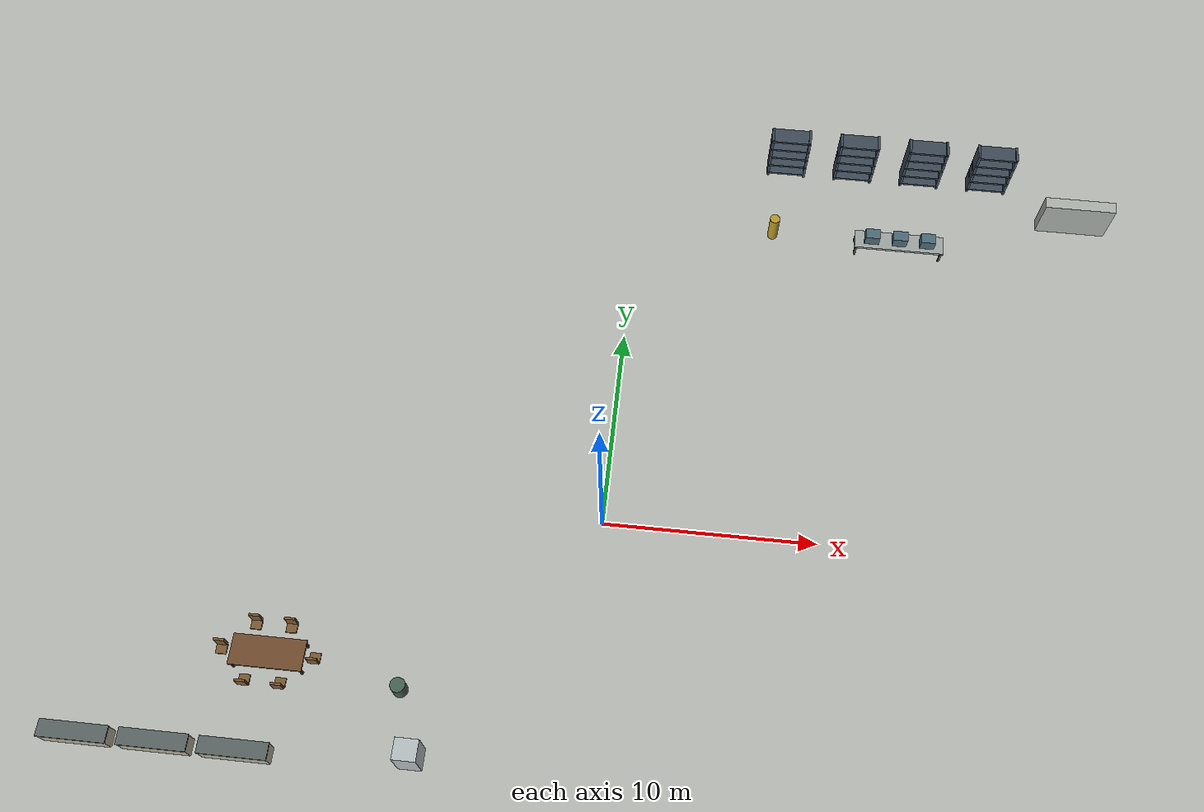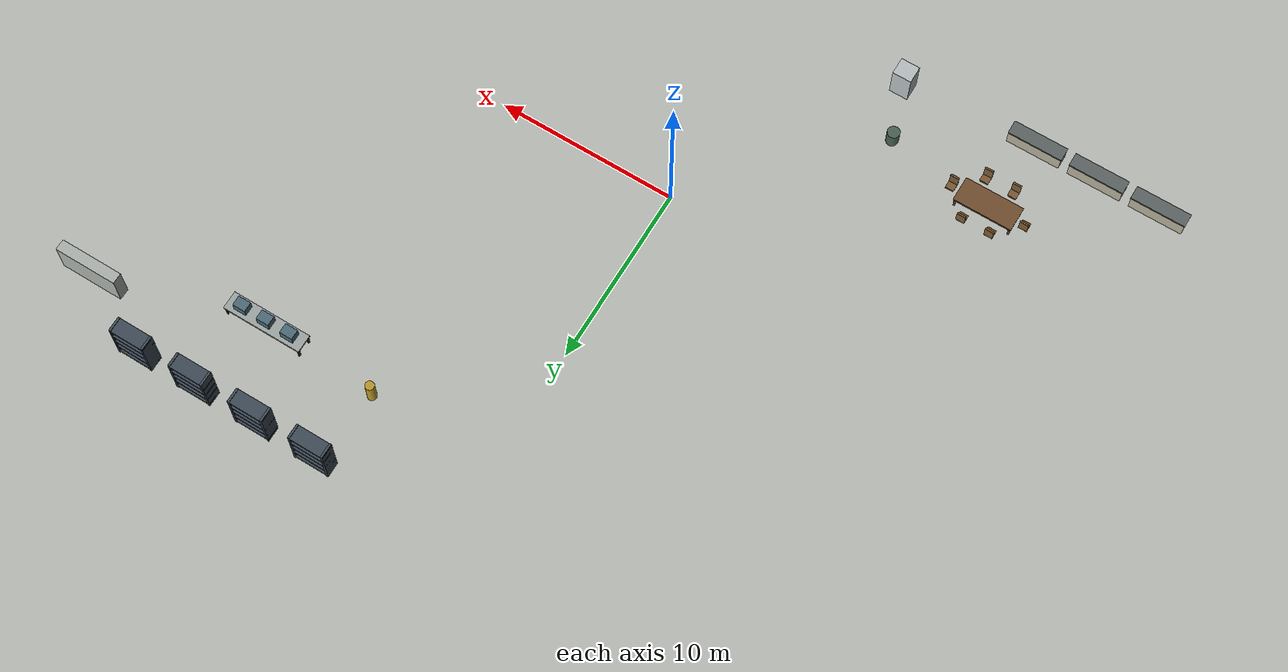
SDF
<sdf version="1.9">
 <world name="default">
  <model name="ground">
   <static>true</static>
   <link name="ground_link">
    <collision name="ground_collision">
     <geometry><plane><normal>0 0 1</normal><size>50 50</size></plane></geometry>
    </collision>
    <visual name="ground_visual">
     <geometry><plane><normal>0 0 1</normal><size>50 50</size></plane></geometry>
     <material><ambient>0.72 0.73 0.71 1</ambient><diffuse>0.72 0.73 0.71 1</diffuse></material>
    </visual>
   </link>
  </model>
  <model name="server_lab_furniture">
   <static>true</static>
   <link name="server_rack_0_shelf_0">
    <pose>7.500 21.000 0.200 0 0 0.0000</pose>
    <collision name="collision"><geometry><box><size>2.000 0.820 0.100</size></box></geometry></collision>
    <visual name="visual">
     <geometry><box><size>2.000 0.820 0.100</size></box></geometry>
     <material><ambient>0.24 0.29 0.34 1</ambient><diffuse>0.24 0.29 0.34 1</diffuse></material>
    </visual>
   </link>
   <link name="server_rack_0_shelf_1">
    <pose>7.500 21.000 0.850 0 0 0.0000</pose>
    <collision name="collision"><geometry><box><size>2.000 0.820 0.100</size></box></geometry></collision>
    <visual name="visual">
     <geometry><box><size>2.000 0.820 0.100</size></box></geometry>
     <material><ambient>0.24 0.29 0.34 1</ambient><diffuse>0.24 0.29 0.34 1</diffuse></material>
    </visual>
   </link>
   <link name="server_rack_0_shelf_2">
    <pose>7.500 21.000 1.500 0 0 0.0000</pose>
    <collision name="collision"><geometry><box><size>2.000 0.820 0.100</size></box></geometry></collision>
    <visual name="visual">
     <geometry><box><size>2.000 0.820 0.100</size></box></geometry>
     <material><ambient>0.24 0.29 0.34 1</ambient><diffuse>0.24 0.29 0.34 1</diffuse></material>
    </visual>
   </link>
   <link name="server_rack_0_shelf_3">
    <pose>7.500 21.000 2.150 0 0 0.0000</pose>
    <collision name="collision"><geometry><box><size>2.000 0.820 0.100</size></box></geometry></collision>
    <visual name="visual">
     <geometry><box><size>2.000 0.820 0.100</size></box></geometry>
     <material><ambient>0.24 0.29 0.34 1</ambient><diffuse>0.24 0.29 0.34 1</diffuse></material>
    </visual>
   </link>
   <link name="server_rack_0_shelf_4">
    <pose>7.500 21.000 2.800 0 0 0.0000</pose>
    <collision name="collision"><geometry><box><size>2.000 0.820 0.100</size></box></geometry></collision>
    <visual name="visual">
     <geometry><box><size>2.000 0.820 0.100</size></box></geometry>
     <material><ambient>0.24 0.29 0.34 1</ambient><diffuse>0.24 0.29 0.34 1</diffuse></material>
    </visual>
   </link>
   <link name="server_rack_0_side_0">
    <pose>6.560 21.000 1.450 0 0 0.0000</pose>
    <collision name="collision"><geometry><box><size>0.120 0.820 2.900</size></box></geometry></collision>
    <visual name="visual">
     <geometry><box><size>0.120 0.820 2.900</size></box></geometry>
     <material><ambient>0.24 0.29 0.34 1</ambient><diffuse>0.24 0.29 0.34 1</diffuse></material>
    </visual>
   </link>
   <link name="server_rack_0_side_1">
    <pose>8.440 21.000 1.450 0 0 0.0000</pose>
    <collision name="collision"><geometry><box><size>0.120 0.820 2.900</size></box></geometry></collision>
    <visual name="visual">
     <geometry><box><size>0.120 0.820 2.900</size></box></geometry>
     <material><ambient>0.24 0.29 0.34 1</ambient><diffuse>0.24 0.29 0.34 1</diffuse></material>
    </visual>
   </link>
   <link name="server_rack_1_shelf_0">
    <pose>11.000 21.000 0.200 0 0 0.0000</pose>
    <collision name="collision"><geometry><box><size>2.000 0.820 0.100</size></box></geometry></collision>
    <visual name="visual">
     <geometry><box><size>2.000 0.820 0.100</size></box></geometry>
     <material><ambient>0.24 0.29 0.34 1</ambient><diffuse>0.24 0.29 0.34 1</diffuse></material>
    </visual>
   </link>
   <link name="server_rack_1_shelf_1">
    <pose>11.000 21.000 0.850 0 0 0.0000</pose>
    <collision name="collision"><geometry><box><size>2.000 0.820 0.100</size></box></geometry></collision>
    <visual name="visual">
     <geometry><box><size>2.000 0.820 0.100</size></box></geometry>
     <material><ambient>0.24 0.29 0.34 1</ambient><diffuse>0.24 0.29 0.34 1</diffuse></material>
    </visual>
   </link>
   <link name="server_rack_1_shelf_2">
    <pose>11.000 21.000 1.500 0 0 0.0000</pose>
    <collision name="collision"><geometry><box><size>2.000 0.820 0.100</size></box></geometry></collision>
    <visual name="visual">
     <geometry><box><size>2.000 0.820 0.100</size></box></geometry>
     <material><ambient>0.24 0.29 0.34 1</ambient><diffuse>0.24 0.29 0.34 1</diffuse></material>
    </visual>
   </link>
   <link name="server_rack_1_shelf_3">
    <pose>11.000 21.000 2.150 0 0 0.0000</pose>
    <collision name="collision"><geometry><box><size>2.000 0.820 0.100</size></box></geometry></collision>
    <visual name="visual">
     <geometry><box><size>2.000 0.820 0.100</size></box></geometry>
     <material><ambient>0.24 0.29 0.34 1</ambient><diffuse>0.24 0.29 0.34 1</diffuse></material>
    </visual>
   </link>
   <link name="server_rack_1_shelf_4">
    <pose>11.000 21.000 2.800 0 0 0.0000</pose>
    <collision name="collision"><geometry><box><size>2.000 0.820 0.100</size></box></geometry></collision>
    <visual name="visual">
     <geometry><box><size>2.000 0.820 0.100</size></box></geometry>
     <material><ambient>0.24 0.29 0.34 1</ambient><diffuse>0.24 0.29 0.34 1</diffuse></material>
    </visual>
   </link>
   <link name="server_rack_1_side_0">
    <pose>10.060 21.000 1.450 0 0 0.0000</pose>
    <collision name="collision"><geometry><box><size>0.120 0.820 2.900</size></box></geometry></collision>
    <visual name="visual">
     <geometry><box><size>0.120 0.820 2.900</size></box></geometry>
     <material><ambient>0.24 0.29 0.34 1</ambient><diffuse>0.24 0.29 0.34 1</diffuse></material>
    </visual>
   </link>
   <link name="server_rack_1_side_1">
    <pose>11.940 21.000 1.450 0 0 0.0000</pose>
    <collision name="collision"><geometry><box><size>0.120 0.820 2.900</size></box></geometry></collision>
    <visual name="visual">
     <geometry><box><size>0.120 0.820 2.900</size></box></geometry>
     <material><ambient>0.24 0.29 0.34 1</ambient><diffuse>0.24 0.29 0.34 1</diffuse></material>
    </visual>
   </link>
   <link name="server_rack_2_shelf_0">
    <pose>14.500 21.000 0.200 0 0 0.0000</pose>
    <collision name="collision"><geometry><box><size>2.000 0.820 0.100</size></box></geometry></collision>
    <visual name="visual">
     <geometry><box><size>2.000 0.820 0.100</size></box></geometry>
     <material><ambient>0.24 0.29 0.34 1</ambient><diffuse>0.24 0.29 0.34 1</diffuse></material>
    </visual>
   </link>
   <link name="server_rack_2_shelf_1">
    <pose>14.500 21.000 0.850 0 0 0.0000</pose>
    <collision name="collision"><geometry><box><size>2.000 0.820 0.100</size></box></geometry></collision>
    <visual name="visual">
     <geometry><box><size>2.000 0.820 0.100</size></box></geometry>
     <material><ambient>0.24 0.29 0.34 1</ambient><diffuse>0.24 0.29 0.34 1</diffuse></material>
    </visual>
   </link>
   <link name="server_rack_2_shelf_2">
    <pose>14.500 21.000 1.500 0 0 0.0000</pose>
    <collision name="collision"><geometry><box><size>2.000 0.820 0.100</size></box></geometry></collision>
    <visual name="visual">
     <geometry><box><size>2.000 0.820 0.100</size></box></geometry>
     <material><ambient>0.24 0.29 0.34 1</ambient><diffuse>0.24 0.29 0.34 1</diffuse></material>
    </visual>
   </link>
   <link name="server_rack_2_shelf_3">
    <pose>14.500 21.000 2.150 0 0 0.0000</pose>
    <collision name="collision"><geometry><box><size>2.000 0.820 0.100</size></box></geometry></collision>
    <visual name="visual">
     <geometry><box><size>2.000 0.820 0.100</size></box></geometry>
     <material><ambient>0.24 0.29 0.34 1</ambient><diffuse>0.24 0.29 0.34 1</diffuse></material>
    </visual>
   </link>
   <link name="server_rack_2_shelf_4">
    <pose>14.500 21.000 2.800 0 0 0.0000</pose>
    <collision name="collision"><geometry><box><size>2.000 0.820 0.100</size></box></geometry></collision>
    <visual name="visual">
     <geometry><box><size>2.000 0.820 0.100</size></box></geometry>
     <material><ambient>0.24 0.29 0.34 1</ambient><diffuse>0.24 0.29 0.34 1</diffuse></material>
    </visual>
   </link>
   <link name="server_rack_2_side_0">
    <pose>13.560 21.000 1.450 0 0 0.0000</pose>
    <collision name="collision"><geometry><box><size>0.120 0.820 2.900</size></box></geometry></collision>
    <visual name="visual">
     <geometry><box><size>0.120 0.820 2.900</size></box></geometry>
     <material><ambient>0.24 0.29 0.34 1</ambient><diffuse>0.24 0.29 0.34 1</diffuse></material>
    </visual>
   </link>
   <link name="server_rack_2_side_1">
    <pose>15.440 21.000 1.450 0 0 0.0000</pose>
    <collision name="collision"><geometry><box><size>0.120 0.820 2.900</size></box></geometry></collision>
    <visual name="visual">
     <geometry><box><size>0.120 0.820 2.900</size></box></geometry>
     <material><ambient>0.24 0.29 0.34 1</ambient><diffuse>0.24 0.29 0.34 1</diffuse></material>
    </visual>
   </link>
   <link name="server_rack_3_shelf_0">
    <pose>18.000 21.000 0.200 0 0 0.0000</pose>
    <collision name="collision"><geometry><box><size>2.000 0.820 0.100</size></box></geometry></collision>
    <visual name="visual">
     <geometry><box><size>2.000 0.820 0.100</size></box></geometry>
     <material><ambient>0.24 0.29 0.34 1</ambient><diffuse>0.24 0.29 0.34 1</diffuse></material>
    </visual>
   </link>
   <link name="server_rack_3_shelf_1">
    <pose>18.000 21.000 0.850 0 0 0.0000</pose>
    <collision name="collision"><geometry><box><size>2.000 0.820 0.100</size></box></geometry></collision>
    <visual name="visual">
     <geometry><box><size>2.000 0.820 0.100</size></box></geometry>
     <material><ambient>0.24 0.29 0.34 1</ambient><diffuse>0.24 0.29 0.34 1</diffuse></material>
    </visual>
   </link>
   <link name="server_rack_3_shelf_2">
    <pose>18.000 21.000 1.500 0 0 0.0000</pose>
    <collision name="collision"><geometry><box><size>2.000 0.820 0.100</size></box></geometry></collision>
    <visual name="visual">
     <geometry><box><size>2.000 0.820 0.100</size></box></geometry>
     <material><ambient>0.24 0.29 0.34 1</ambient><diffuse>0.24 0.29 0.34 1</diffuse></material>
    </visual>
   </link>
   <link name="server_rack_3_shelf_3">
    <pose>18.000 21.000 2.150 0 0 0.0000</pose>
    <collision name="collision"><geometry><box><size>2.000 0.820 0.100</size></box></geometry></collision>
    <visual name="visual">
     <geometry><box><size>2.000 0.820 0.100</size></box></geometry>
     <material><ambient>0.24 0.29 0.34 1</ambient><diffuse>0.24 0.29 0.34 1</diffuse></material>
    </visual>
   </link>
   <link name="server_rack_3_shelf_4">
    <pose>18.000 21.000 2.800 0 0 0.0000</pose>
    <collision name="collision"><geometry><box><size>2.000 0.820 0.100</size></box></geometry></collision>
    <visual name="visual">
     <geometry><box><size>2.000 0.820 0.100</size></box></geometry>
     <material><ambient>0.24 0.29 0.34 1</ambient><diffuse>0.24 0.29 0.34 1</diffuse></material>
    </visual>
   </link>
   <link name="server_rack_3_side_0">
    <pose>17.060 21.000 1.450 0 0 0.0000</pose>
    <collision name="collision"><geometry><box><size>0.120 0.820 2.900</size></box></geometry></collision>
    <visual name="visual">
     <geometry><box><size>0.120 0.820 2.900</size></box></geometry>
     <material><ambient>0.24 0.29 0.34 1</ambient><diffuse>0.24 0.29 0.34 1</diffuse></material>
    </visual>
   </link>
   <link name="server_rack_3_side_1">
    <pose>18.940 21.000 1.450 0 0 0.0000</pose>
    <collision name="collision"><geometry><box><size>0.120 0.820 2.900</size></box></geometry></collision>
    <visual name="visual">
     <geometry><box><size>0.120 0.820 2.900</size></box></geometry>
     <material><ambient>0.24 0.29 0.34 1</ambient><diffuse>0.24 0.29 0.34 1</diffuse></material>
    </visual>
   </link>
   <link name="lab_workbench_top">
    <pose>13.400 16.500 0.760 0 0 0.0000</pose>
    <collision name="collision"><geometry><box><size>4.500 1.000 0.120</size></box></geometry></collision>
    <visual name="visual">
     <geometry><box><size>4.500 1.000 0.120</size></box></geometry>
     <material><ambient>0.62 0.65 0.64 1</ambient><diffuse>0.62 0.65 0.64 1</diffuse></material>
    </visual>
   </link>
   <link name="lab_workbench_leg_0_0">
    <pose>11.250 16.100 0.350 0 0 0.0000</pose>
    <collision name="collision"><geometry><box><size>0.100 0.100 0.700</size></box></geometry></collision>
    <visual name="visual">
     <geometry><box><size>0.100 0.100 0.700</size></box></geometry>
     <material><ambient>0.30 0.28 0.25 1</ambient><diffuse>0.30 0.28 0.25 1</diffuse></material>
    </visual>
   </link>
   <link name="lab_workbench_leg_0_1">
    <pose>11.250 16.900 0.350 0 0 0.0000</pose>
    <collision name="collision"><geometry><box><size>0.100 0.100 0.700</size></box></geometry></collision>
    <visual name="visual">
     <geometry><box><size>0.100 0.100 0.700</size></box></geometry>
     <material><ambient>0.30 0.28 0.25 1</ambient><diffuse>0.30 0.28 0.25 1</diffuse></material>
    </visual>
   </link>
   <link name="lab_workbench_leg_1_0">
    <pose>15.550 16.100 0.350 0 0 0.0000</pose>
    <collision name="collision"><geometry><box><size>0.100 0.100 0.700</size></box></geometry></collision>
    <visual name="visual">
     <geometry><box><size>0.100 0.100 0.700</size></box></geometry>
     <material><ambient>0.30 0.28 0.25 1</ambient><diffuse>0.30 0.28 0.25 1</diffuse></material>
    </visual>
   </link>
   <link name="lab_workbench_leg_1_1">
    <pose>15.550 16.900 0.350 0 0 0.0000</pose>
    <collision name="collision"><geometry><box><size>0.100 0.100 0.700</size></box></geometry></collision>
    <visual name="visual">
     <geometry><box><size>0.100 0.100 0.700</size></box></geometry>
     <material><ambient>0.30 0.28 0.25 1</ambient><diffuse>0.30 0.28 0.25 1</diffuse></material>
    </visual>
   </link>
   <link name="lab_instrument_0">
    <pose>12.000 16.500 1.100 0 0 0.0000</pose>
    <collision name="collision"><geometry><box><size>0.720 0.550 0.550</size></box></geometry></collision>
    <visual name="visual">
     <geometry><box><size>0.720 0.550 0.550</size></box></geometry>
     <material><ambient>0.30 0.42 0.47 1</ambient><diffuse>0.30 0.42 0.47 1</diffuse></material>
    </visual>
   </link>
   <link name="lab_instrument_1">
    <pose>13.400 16.500 1.100 0 0 0.0000</pose>
    <collision name="collision"><geometry><box><size>0.720 0.550 0.550</size></box></geometry></collision>
    <visual name="visual">
     <geometry><box><size>0.720 0.550 0.550</size></box></geometry>
     <material><ambient>0.30 0.42 0.47 1</ambient><diffuse>0.30 0.42 0.47 1</diffuse></material>
    </visual>
   </link>
   <link name="lab_instrument_2">
    <pose>14.800 16.500 1.100 0 0 0.0000</pose>
    <collision name="collision"><geometry><box><size>0.720 0.550 0.550</size></box></geometry></collision>
    <visual name="visual">
     <geometry><box><size>0.720 0.550 0.550</size></box></geometry>
     <material><ambient>0.30 0.42 0.47 1</ambient><diffuse>0.30 0.42 0.47 1</diffuse></material>
    </visual>
   </link>
   <link name="lab_storage_cabinet">
    <pose>22.300 18.800 1.050 0 0 1.5708</pose>
    <collision name="collision"><geometry><box><size>0.600 3.500 2.100</size></box></geometry></collision>
    <visual name="visual">
     <geometry><box><size>0.600 3.500 2.100</size></box></geometry>
     <material><ambient>0.68 0.70 0.68 1</ambient><diffuse>0.68 0.70 0.68 1</diffuse></material>
    </visual>
   </link>
   <link name="lab_gas_cylinder">
    <pose>7.000 16.800 0.750 0 0 0.0000</pose>
    <collision name="collision">
     <geometry><cylinder><radius>0.250</radius><length>1.500</length></cylinder></geometry>
    </collision>
    <visual name="visual">
     <geometry><cylinder><radius>0.250</radius><length>1.500</length></cylinder></geometry>
     <material><ambient>0.72 0.60 0.16 1</ambient><diffuse>0.72 0.60 0.16 1</diffuse></material>
    </visual>
   </link>
  </model>
  <model name="kitchen_furniture">
   <static>true</static>
   <link name="kitchen_counter_0">
    <pose>-21.500 -12.100 0.460 0 0 0.0000</pose>
    <collision name="collision"><geometry><box><size>3.000 0.720 0.920</size></box></geometry></collision>
    <visual name="visual">
     <geometry><box><size>3.000 0.720 0.920</size></box></geometry>
     <material><ambient>0.70 0.68 0.60 1</ambient><diffuse>0.70 0.68 0.60 1</diffuse></material>
    </visual>
   </link>
   <link name="kitchen_counter_top_0">
    <pose>-21.500 -12.100 0.960 0 0 0.0000</pose>
    <collision name="collision"><geometry><box><size>3.050 0.760 0.080</size></box></geometry></collision>
    <visual name="visual">
     <geometry><box><size>3.050 0.760 0.080</size></box></geometry>
     <material><ambient>0.36 0.39 0.39 1</ambient><diffuse>0.36 0.39 0.39 1</diffuse></material>
    </visual>
   </link>
   <link name="kitchen_counter_1">
    <pose>-18.000 -12.100 0.460 0 0 0.0000</pose>
    <collision name="collision"><geometry><box><size>3.000 0.720 0.920</size></box></geometry></collision>
    <visual name="visual">
     <geometry><box><size>3.000 0.720 0.920</size></box></geometry>
     <material><ambient>0.70 0.68 0.60 1</ambient><diffuse>0.70 0.68 0.60 1</diffuse></material>
    </visual>
   </link>
   <link name="kitchen_counter_top_1">
    <pose>-18.000 -12.100 0.960 0 0 0.0000</pose>
    <collision name="collision"><geometry><box><size>3.050 0.760 0.080</size></box></geometry></collision>
    <visual name="visual">
     <geometry><box><size>3.050 0.760 0.080</size></box></geometry>
     <material><ambient>0.36 0.39 0.39 1</ambient><diffuse>0.36 0.39 0.39 1</diffuse></material>
    </visual>
   </link>
   <link name="kitchen_counter_2">
    <pose>-14.500 -12.100 0.460 0 0 0.0000</pose>
    <collision name="collision"><geometry><box><size>3.000 0.720 0.920</size></box></geometry></collision>
    <visual name="visual">
     <geometry><box><size>3.000 0.720 0.920</size></box></geometry>
     <material><ambient>0.70 0.68 0.60 1</ambient><diffuse>0.70 0.68 0.60 1</diffuse></material>
    </visual>
   </link>
   <link name="kitchen_counter_top_2">
    <pose>-14.500 -12.100 0.960 0 0 0.0000</pose>
    <collision name="collision"><geometry><box><size>3.050 0.760 0.080</size></box></geometry></collision>
    <visual name="visual">
     <geometry><box><size>3.050 0.760 0.080</size></box></geometry>
     <material><ambient>0.36 0.39 0.39 1</ambient><diffuse>0.36 0.39 0.39 1</diffuse></material>
    </visual>
   </link>
   <link name="kitchen_refrigerator">
    <pose>-7.000 -11.600 1.000 0 0 0.0000</pose>
    <collision name="collision"><geometry><box><size>1.050 0.950 2.000</size></box></geometry></collision>
    <visual name="visual">
     <geometry><box><size>1.050 0.950 2.000</size></box></geometry>
     <material><ambient>0.72 0.75 0.76 1</ambient><diffuse>0.72 0.75 0.76 1</diffuse></material>
    </visual>
   </link>
   <link name="dining_table_top">
    <pose>-14.000 -7.800 0.700 0 0 0.0000</pose>
    <collision name="collision"><geometry><box><size>3.300 1.400 0.120</size></box></geometry></collision>
    <visual name="visual">
     <geometry><box><size>3.300 1.400 0.120</size></box></geometry>
     <material><ambient>0.44 0.30 0.18 1</ambient><diffuse>0.44 0.30 0.18 1</diffuse></material>
    </visual>
   </link>
   <link name="dining_table_leg_0_0">
    <pose>-15.550 -8.400 0.320 0 0 0.0000</pose>
    <collision name="collision"><geometry><box><size>0.100 0.100 0.640</size></box></geometry></collision>
    <visual name="visual">
     <geometry><box><size>0.100 0.100 0.640</size></box></geometry>
     <material><ambient>0.30 0.28 0.25 1</ambient><diffuse>0.30 0.28 0.25 1</diffuse></material>
    </visual>
   </link>
   <link name="dining_table_leg_0_1">
    <pose>-15.550 -7.200 0.320 0 0 0.0000</pose>
    <collision name="collision"><geometry><box><size>0.100 0.100 0.640</size></box></geometry></collision>
    <visual name="visual">
     <geometry><box><size>0.100 0.100 0.640</size></box></geometry>
     <material><ambient>0.30 0.28 0.25 1</ambient><diffuse>0.30 0.28 0.25 1</diffuse></material>
    </visual>
   </link>
   <link name="dining_table_leg_1_0">
    <pose>-12.450 -8.400 0.320 0 0 0.0000</pose>
    <collision name="collision"><geometry><box><size>0.100 0.100 0.640</size></box></geometry></collision>
    <visual name="visual">
     <geometry><box><size>0.100 0.100 0.640</size></box></geometry>
     <material><ambient>0.30 0.28 0.25 1</ambient><diffuse>0.30 0.28 0.25 1</diffuse></material>
    </visual>
   </link>
   <link name="dining_table_leg_1_1">
    <pose>-12.450 -7.200 0.320 0 0 0.0000</pose>
    <collision name="collision"><geometry><box><size>0.100 0.100 0.640</size></box></geometry></collision>
    <visual name="visual">
     <geometry><box><size>0.100 0.100 0.640</size></box></geometry>
     <material><ambient>0.30 0.28 0.25 1</ambient><diffuse>0.30 0.28 0.25 1</diffuse></material>
    </visual>
   </link>
   <link name="dining_chair_0_seat">
    <pose>-16.100 -7.800 0.520 0 0 0.0000</pose>
    <collision name="collision"><geometry><box><size>0.480 0.460 0.100</size></box></geometry></collision>
    <visual name="visual">
     <geometry><box><size>0.480 0.460 0.100</size></box></geometry>
     <material><ambient>0.48 0.35 0.20 1</ambient><diffuse>0.48 0.35 0.20 1</diffuse></material>
    </visual>
   </link>
   <link name="dining_chair_0_back">
    <pose>-16.100 -7.580 0.910 0 0 0.0000</pose>
    <collision name="collision"><geometry><box><size>0.480 0.100 0.680</size></box></geometry></collision>
    <visual name="visual">
     <geometry><box><size>0.480 0.100 0.680</size></box></geometry>
     <material><ambient>0.48 0.35 0.20 1</ambient><diffuse>0.48 0.35 0.20 1</diffuse></material>
    </visual>
   </link>
   <link name="dining_chair_1_seat">
    <pose>-14.800 -6.550 0.520 0 0 0.0000</pose>
    <collision name="collision"><geometry><box><size>0.480 0.460 0.100</size></box></geometry></collision>
    <visual name="visual">
     <geometry><box><size>0.480 0.460 0.100</size></box></geometry>
     <material><ambient>0.48 0.35 0.20 1</ambient><diffuse>0.48 0.35 0.20 1</diffuse></material>
    </visual>
   </link>
   <link name="dining_chair_1_back">
    <pose>-14.800 -6.330 0.910 0 0 0.0000</pose>
    <collision name="collision"><geometry><box><size>0.480 0.100 0.680</size></box></geometry></collision>
    <visual name="visual">
     <geometry><box><size>0.480 0.100 0.680</size></box></geometry>
     <material><ambient>0.48 0.35 0.20 1</ambient><diffuse>0.48 0.35 0.20 1</diffuse></material>
    </visual>
   </link>
   <link name="dining_chair_2_seat">
    <pose>-13.200 -6.550 0.520 0 0 0.0000</pose>
    <collision name="collision"><geometry><box><size>0.480 0.460 0.100</size></box></geometry></collision>
    <visual name="visual">
     <geometry><box><size>0.480 0.460 0.100</size></box></geometry>
     <material><ambient>0.48 0.35 0.20 1</ambient><diffuse>0.48 0.35 0.20 1</diffuse></material>
    </visual>
   </link>
   <link name="dining_chair_2_back">
    <pose>-13.200 -6.330 0.910 0 0 0.0000</pose>
    <collision name="collision"><geometry><box><size>0.480 0.100 0.680</size></box></geometry></collision>
    <visual name="visual">
     <geometry><box><size>0.480 0.100 0.680</size></box></geometry>
     <material><ambient>0.48 0.35 0.20 1</ambient><diffuse>0.48 0.35 0.20 1</diffuse></material>
    </visual>
   </link>
   <link name="dining_chair_3_seat">
    <pose>-11.900 -7.800 0.520 0 0 3.1416</pose>
    <collision name="collision"><geometry><box><size>0.480 0.460 0.100</size></box></geometry></collision>
    <visual name="visual">
     <geometry><box><size>0.480 0.460 0.100</size></box></geometry>
     <material><ambient>0.48 0.35 0.20 1</ambient><diffuse>0.48 0.35 0.20 1</diffuse></material>
    </visual>
   </link>
   <link name="dining_chair_3_back">
    <pose>-11.900 -8.020 0.910 0 0 3.1416</pose>
    <collision name="collision"><geometry><box><size>0.480 0.100 0.680</size></box></geometry></collision>
    <visual name="visual">
     <geometry><box><size>0.480 0.100 0.680</size></box></geometry>
     <material><ambient>0.48 0.35 0.20 1</ambient><diffuse>0.48 0.35 0.20 1</diffuse></material>
    </visual>
   </link>
   <link name="dining_chair_4_seat">
    <pose>-14.800 -9.050 0.520 0 0 3.1416</pose>
    <collision name="collision"><geometry><box><size>0.480 0.460 0.100</size></box></geometry></collision>
    <visual name="visual">
     <geometry><box><size>0.480 0.460 0.100</size></box></geometry>
     <material><ambient>0.48 0.35 0.20 1</ambient><diffuse>0.48 0.35 0.20 1</diffuse></material>
    </visual>
   </link>
   <link name="dining_chair_4_back">
    <pose>-14.800 -9.270 0.910 0 0 3.1416</pose>
    <collision name="collision"><geometry><box><size>0.480 0.100 0.680</size></box></geometry></collision>
    <visual name="visual">
     <geometry><box><size>0.480 0.100 0.680</size></box></geometry>
     <material><ambient>0.48 0.35 0.20 1</ambient><diffuse>0.48 0.35 0.20 1</diffuse></material>
    </visual>
   </link>
   <link name="dining_chair_5_seat">
    <pose>-13.200 -9.050 0.520 0 0 3.1416</pose>
    <collision name="collision"><geometry><box><size>0.480 0.460 0.100</size></box></geometry></collision>
    <visual name="visual">
     <geometry><box><size>0.480 0.460 0.100</size></box></geometry>
     <material><ambient>0.48 0.35 0.20 1</ambient><diffuse>0.48 0.35 0.20 1</diffuse></material>
    </visual>
   </link>
   <link name="dining_chair_5_back">
    <pose>-13.200 -9.270 0.910 0 0 3.1416</pose>
    <collision name="collision"><geometry><box><size>0.480 0.100 0.680</size></box></geometry></collision>
    <visual name="visual">
     <geometry><box><size>0.480 0.100 0.680</size></box></geometry>
     <material><ambient>0.48 0.35 0.20 1</ambient><diffuse>0.48 0.35 0.20 1</diffuse></material>
    </visual>
   </link>
   <link name="kitchen_bin">
    <pose>-8.000 -8.700 0.480 0 0 0.0000</pose>
    <collision name="collision">
     <geometry><cylinder><radius>0.340</radius><length>0.960</length></cylinder></geometry>
    </collision>
    <visual name="visual">
     <geometry><cylinder><radius>0.340</radius><length>0.960</length></cylinder></geometry>
     <material><ambient>0.28 0.38 0.32 1</ambient><diffuse>0.28 0.38 0.32 1</diffuse></material>
    </visual>
   </link>
  </model>
 </world>
</sdf>
